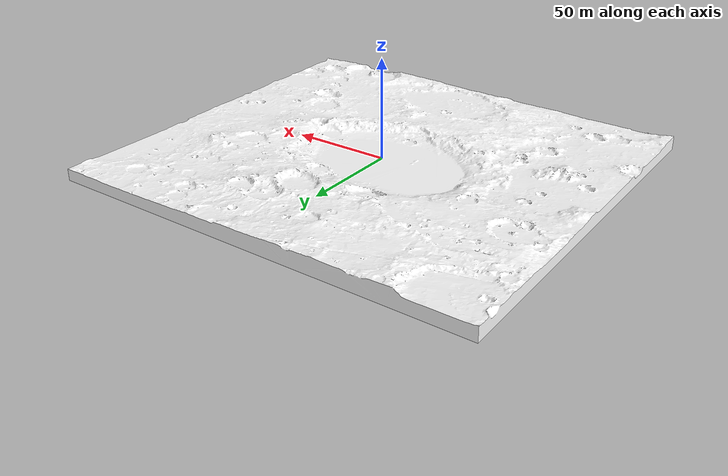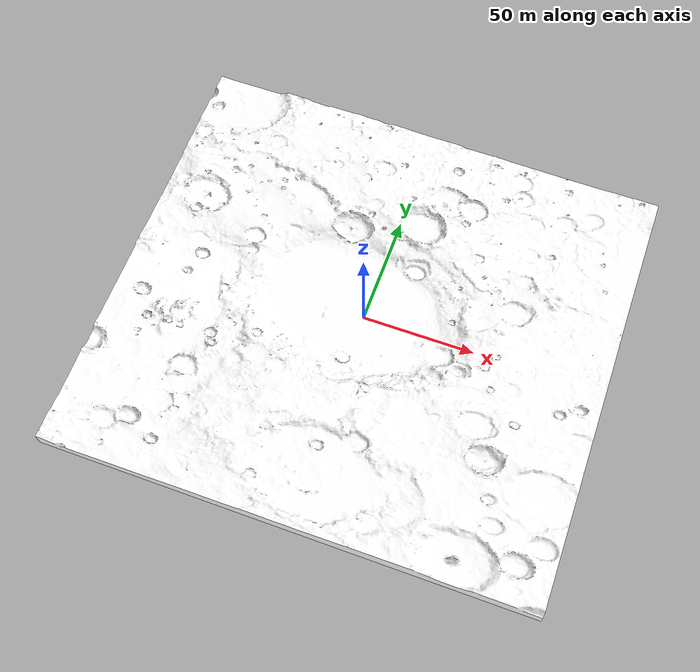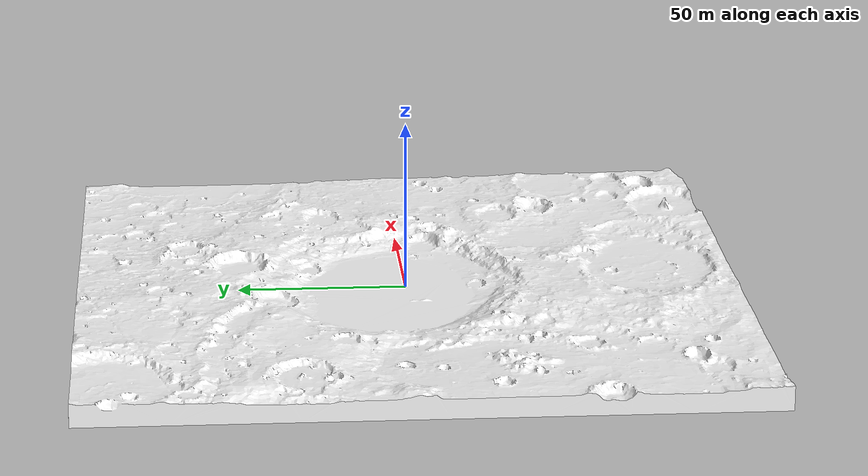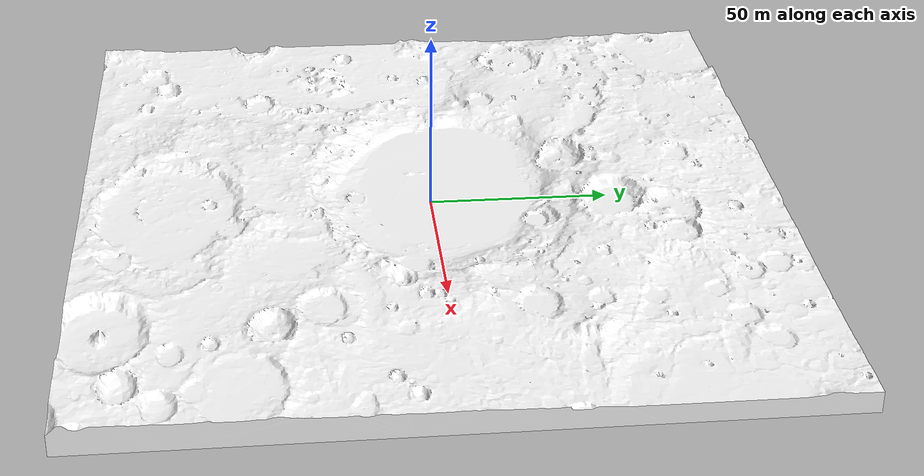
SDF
<?xml version="1.0"?>
<sdf version="1.9">

  <model name="Martian_Surface">

    <pose>0 0 0 0 0 0</pose>
    <static>true</static>

    <link name="link">

      <!-- VISUAL  -->

      <visual name="visual">

        <cast_shadows>true</cast_shadows>

        <geometry>
          <mesh>
            <uri>meshes/Martian_Surface3.obj</uri>
            <scale>0.5 0.5 0.5</scale>
          </mesh>
        </geometry>

        <material>

        <!---- for different texture  -->
          <pbr>
            <metal>
              <albedo_map>
                materials/textures/Martian_Sand.png
              </albedo_map>
            </metal>
          </pbr>

          <diffuse>1 1 1 1</diffuse>

        </material>

      </visual>

          <diffuse>1 1 1 1</diffuse>

      <!-- COLLISION  -->

      <collision name="collision">

        <geometry>
          <mesh>
            <uri>meshes/Martian_Surface_collision.stl</uri>
            <scale>0.5 0.5 0.5</scale>
          </mesh>
        </geometry>

        <surface>
          <friction>
            <ode>
              <mu>1.0</mu>
              <mu2>1.0</mu2>
            </ode>
          </friction>
        </surface>

      </collision>

    </link>

  </model>

</sdf>
